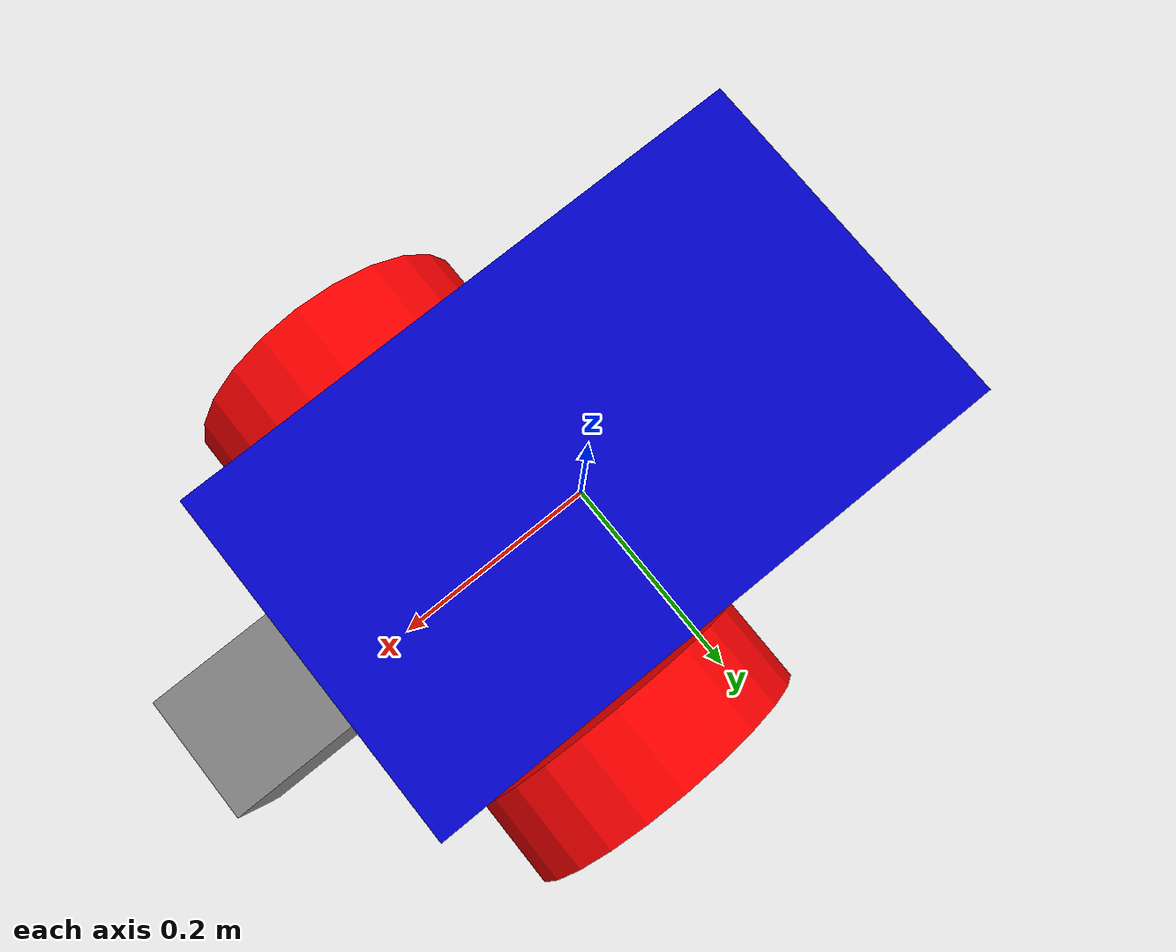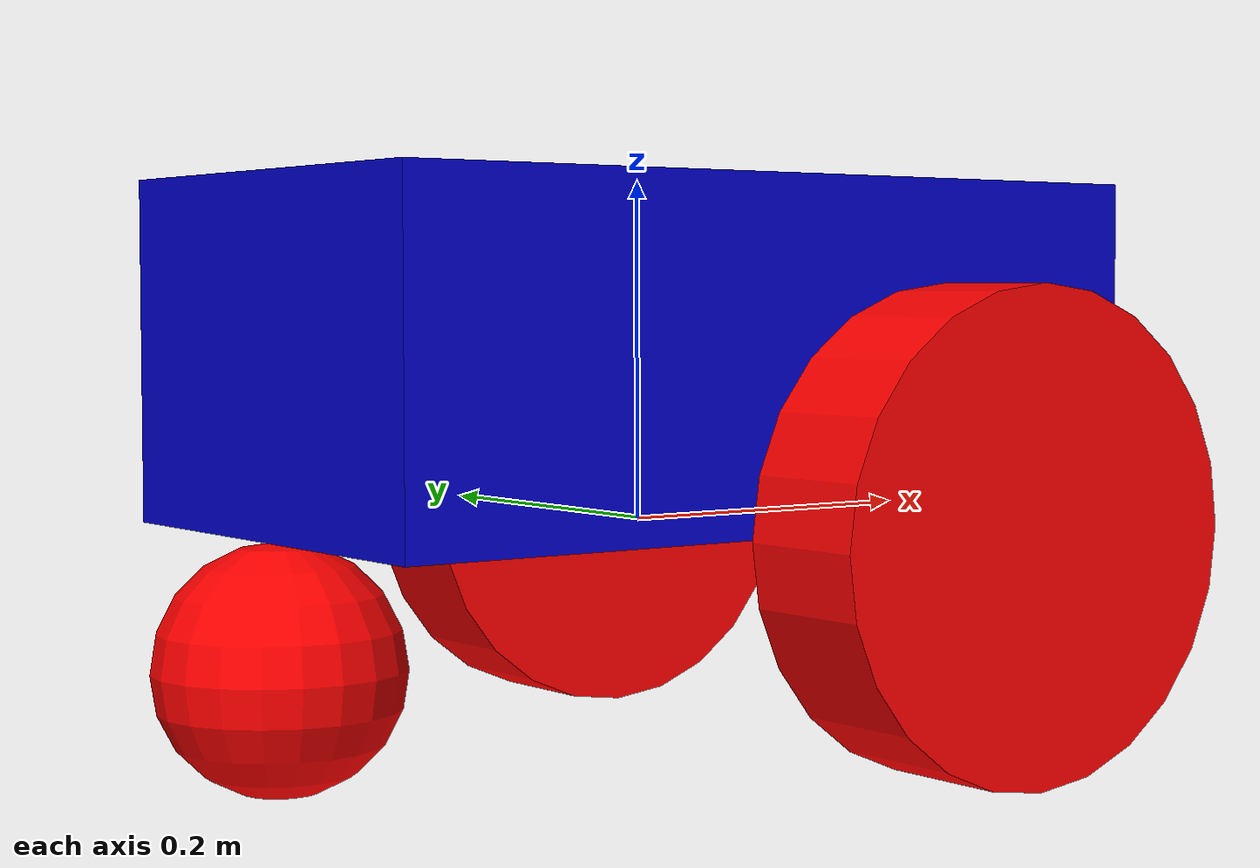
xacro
<?xml version="1.0"?>
<robot xmlns:xacro="http://www.ros.org/wiki/xacro">

  <link name="base_link">
    <inertial>
      <mass value="5.0"/>
      <origin xyz="0 0 0.1" rpy="0 0 0"/>
      <inertia ixx="0.0541667" ixy="0.0" ixz="0.0" iyy="0.1208333" iyz="0.0" izz="0.1416667"/>
    </inertial>

    <visual>
      <origin xyz="0 0 0.1" rpy="0 0 0"/>
      <geometry>
        <box size="0.5 0.3 0.2"/>
      </geometry>
      <material name="blue">
        <color rgba="0 0 0.8 1"/>
      </material>
    </visual>

    <collision>
      <origin xyz="0 0 0.1" rpy="0 0 0"/>
      <geometry>
        <box size="0.5 0.3 0.2"/>
      </geometry>
    </collision>
  </link>

  <link name="base_footprint">

  </link>

  <joint name="base_footprint_joint" type="fixed">
    <parent link="base_link"/>
    <child link="base_footprint"/>
    <origin xyz="0 0 0" rpy="0 0 0"/>
  </joint>

  <!-- Front right wheel -->
  <link name="front_right_wheel">
    <inertial>
      <mass value="1.0"/>
      <inertia ixx="0.00535" ixy="0.0" ixz="0.0" iyy="0.0098" iyz="0.0" izz="0.00535"/>
    </inertial>
    <visual>
      <origin xyz="0 0 0" rpy="1.57075 0 0"/>
      <geometry>
        <cylinder length="0.08" radius="0.14"/>
      </geometry>
      <material name="red">
        <color rgba="1 0 0 1"/>
      </material>
    </visual>
    <collision>
      <origin xyz="0 0 0" rpy="1.57075 0 0"/>
      <geometry>
        <cylinder length="0.08" radius="0.14"/>
      </geometry>
    </collision>
  </link>

  <joint name="base_to_front_right_wheel" type="continuous">
    <parent link="base_link"/>
    <child link="front_right_wheel"/>
    <origin xyz="0.1 -0.2 0" rpy="0 0 0"/>
    <axis xyz="0 1 0"/>
    <dynamics damping="0.1"/>
  </joint>

  <gazebo reference="front_right_wheel">
    <mu1>1</mu1>
    <mu2>1</mu2>
  </gazebo>

  <!-- Front left wheel -->
  <link name="front_left_wheel">
    <inertial>
      <mass value="1.0"/>
      <inertia ixx="0.00535" ixy="0.0" ixz="0.0" iyy="0.0098" iyz="0.0" izz="0.00535"/>
    </inertial>
    <visual>
      <origin xyz="0 0 0" rpy="1.57075 0 0"/>
      <geometry>
        <cylinder length="0.08" radius="0.14"/>
      </geometry>
      <material name="red">
        <color rgba="1 0 0 1"/>
      </material>
    </visual>
    <collision>
      <origin xyz="0 0 0" rpy="1.57075 0 0"/>
      <geometry>
        <cylinder length="0.08" radius="0.14"/>
      </geometry>
    </collision>
  </link>

  <joint name="base_to_front_left_wheel" type="continuous">
    <parent link="base_link"/>
    <child link="front_left_wheel"/>
    <origin xyz="0.1 0.2 0" rpy="0 0 0"/>
    <axis xyz="0 1 0"/>
    <dynamics damping="0.1"/>
  </joint>

  <gazebo reference="front_left_wheel">
    <mu1>1</mu1>
    <mu2>1</mu2>
  </gazebo>

  <link name="front_wheel">
    <inertial>
      <mass value="1.0"/>
      <!-- Solid sphere inertia: I = 2/5 * m * r^2 = 2/5 * 1.0 * 0.07^2 = 0.00196 -->
      <inertia ixx="0.00196" ixy="0.0" ixz="0.0" iyy="0.00196" iyz="0.0" izz="0.00196"/>
    </inertial>

    <visual>
      <origin xyz="0 0 0" rpy="0 0 0"/>
      <geometry>
        <sphere radius="0.07"/>
      </geometry>
      <material name="red">
        <color rgba="1 0 0 1"/>
      </material>
    </visual>

    <collision>
      <origin xyz="0 0 0" rpy="0 0 0"/>
      <geometry>
        <sphere radius="0.07"/>
      </geometry>
    </collision>
  </link>

  <!-- Joint X=-0.24: caster sits 1 cm inside chassis rear wall (rear wall at x=-0.25).
       Joint Z=-0.07: sphere top touches chassis bottom (z=0), bottom touches ground (z=-0.14). -->
  <joint name="base_to_front_wheel" type="fixed">
    <parent link="base_link"/>
    <child link="front_wheel"/>
    <origin xyz="-0.24 0 -0.07" rpy="0 0 0"/>
  </joint>

  <gazebo reference="front_wheel">
    <mu1>0.0</mu1>
    <mu2>0.0</mu2>
    <min_depth>0.001</min_depth>
  </gazebo>

  <transmission name="front_left_wheel_trans">
    <type>transmission_interface/SimpleTransmission</type>
    <joint name="base_to_front_left_wheel">
      <hardwareInterface>hardware_interface/velocity</hardwareInterface>
    </joint>
    <actuator name="front_left_motor">
      <hardwareInterface>hardware_interface/velocity</hardwareInterface>
      <mechanicalReduction>1</mechanicalReduction>
    </actuator>
  </transmission>

  <transmission name="front_right_wheel_trans">
    <type>transmission_interface/SimpleTransmission</type>
    <joint name="base_to_front_right_wheel">
      <hardwareInterface>hardware_interface/velocity</hardwareInterface>
    </joint>
    <actuator name="front_right_motor">
      <hardwareInterface>hardware_interface/velocity</hardwareInterface>
      <mechanicalReduction>1</mechanicalReduction>
    </actuator>
  </transmission>

  <link name="camera_link">
    <visual>
      <geometry>
        <box size="0.1 0.1 0.1"/>
      </geometry>
      <material name="Grey">
        <color rgba="0.5 0.5 0.5 1"/>
      </material>
    </visual>
    <collision>
      <geometry>
        <box size="0.05 0.05 0.05"/>
      </geometry>
    </collision>
    <inertial>
      <mass value="0.1"/>
      <inertia ixx="0.0001" iyy="0.0001" izz="0.0001" ixy="0" ixz="0" iyz="0"/>
    </inertial>
  </link>

  <joint name="camera_joint" type="fixed">
    <parent link="base_link"/>
    <child link="camera_link"/>
    <origin xyz="0.3 0 0.14" rpy="0 0 0"/>
  </joint>

  <gazebo reference="camera_link">
    <sensor type="camera" name="camera_sensor">
      <always_on>false</always_on>
      <update_rate>0.001</update_rate>
      <visualize>false</visualize>

      <camera>
        <camera_info_topic>camera/camera_info</camera_info_topic>
        <horizontal_fov>1.047</horizontal_fov>
        <image>
          <width>640</width>
          <height>480</height>
          <format>R8G8B8</format>
        </image>
        <clip>
          <near>0.1</near>
          <far>100</far>
        </clip>
      </camera>
      <topic>camera/image_raw</topic>
      <gz_frame_id>camera_link_optical</gz_frame_id>
    </sensor>
  </gazebo>

</robot>
